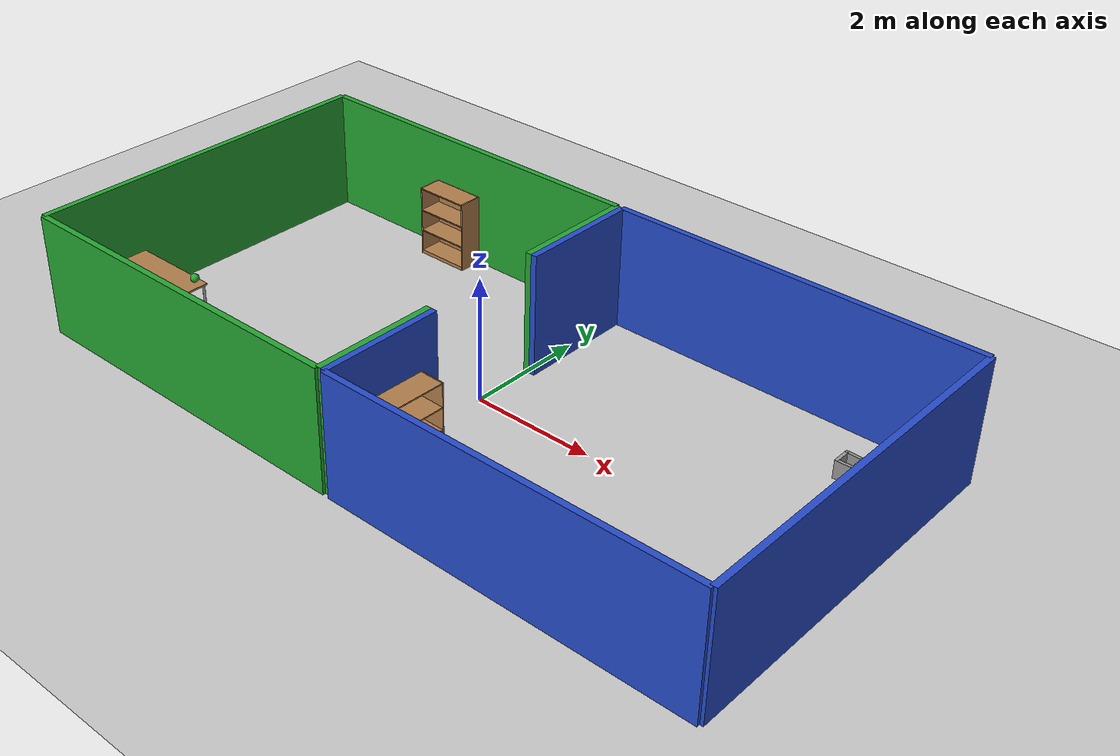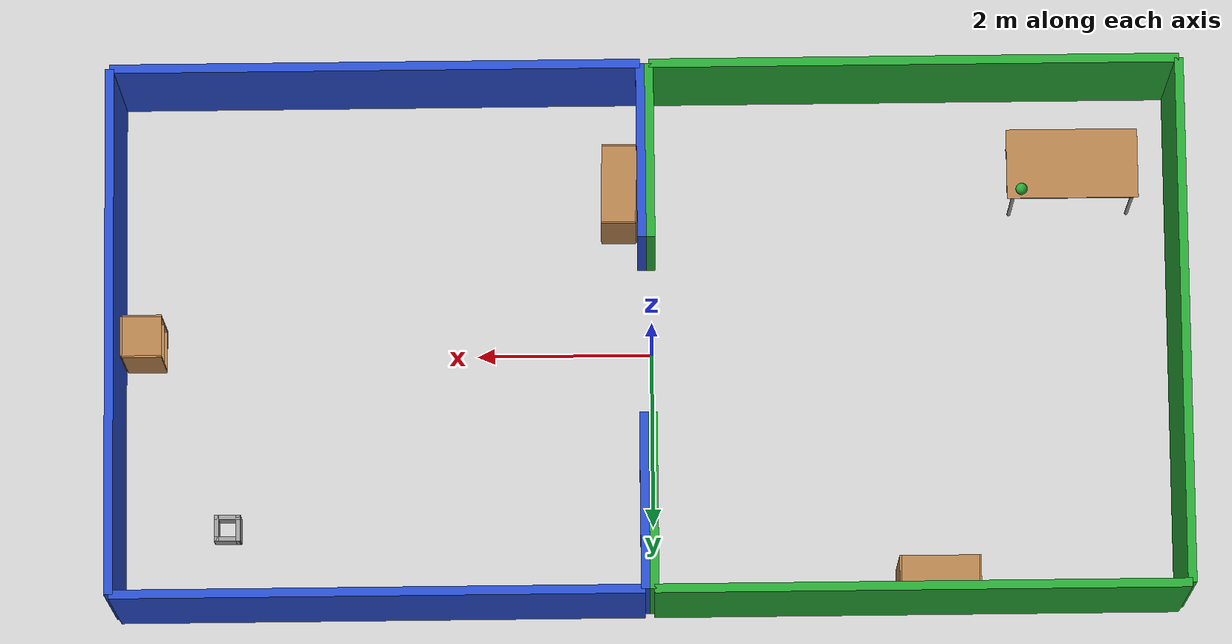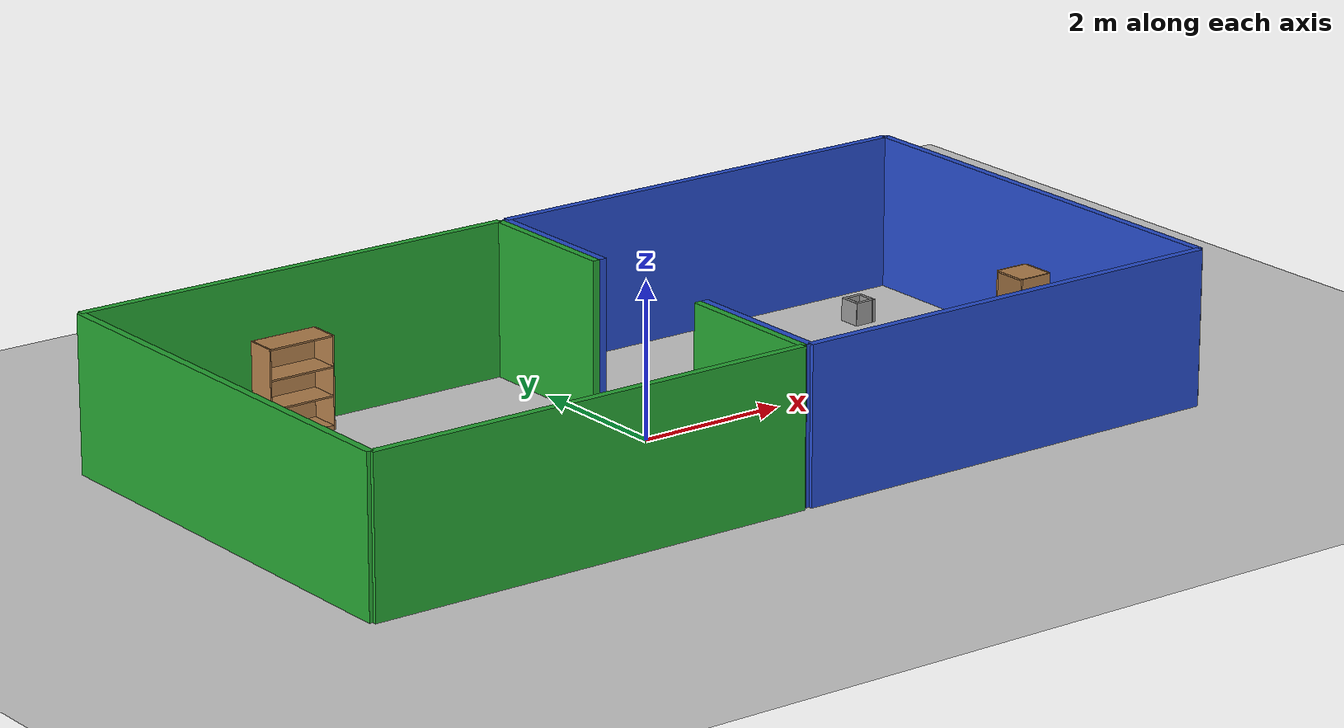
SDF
<sdf version="1.7">
 <world name="default">
  <light name="sun" type="directional">
   <pose>0 0 10 0 -0 0</pose>
   <diffuse>0.8 0.8 0.8 1</diffuse>
   <specular>0.2 0.2 0.2 1</specular>
   <attenuation>
    <range>1000</range>
    <constant>0.9</constant>
    <linear>0.01</linear>
    <quadratic>0.001</quadratic>
   </attenuation>
   <direction>-0.5 0.1 -0.9</direction>
   <spot><inner_angle>0</inner_angle><outer_angle>0</outer_angle><falloff>0</falloff></spot>
  </light>
  <model name="ground_plane">
   <static>1</static>
   <link name="link">
    <collision name="collision">
     <geometry><plane><normal>0 0 1</normal><size>100 100</size></plane></geometry>
     <surface>
      <contact><collide_bitmask>65535</collide_bitmask></contact>
      <friction><ode><mu>100</mu><mu2>50</mu2></ode></friction>
     </surface>
    </collision>
    <visual name="visual">
     <cast_shadows>0</cast_shadows>
     <geometry><plane><normal>0 0 1</normal><size>100 100</size></plane></geometry>
     <material>
      <script><uri>file://media/materials/scripts/gazebo.material</uri><name>Gazebo/Grey</name></script>
     </material>
    </visual>
   </link>
  </model>
  <gravity>0 0 -9.8</gravity>
  <magnetic_field>6e-06 2.3e-05 -4.2e-05</magnetic_field>
  <atmosphere type="adiabatic"/>
  <physics type="ode">
   <max_step_size>0.001</max_step_size>
   <real_time_factor>1</real_time_factor>
   <real_time_update_rate>1000</real_time_update_rate>
  </physics>
  <scene><ambient>0.4 0.4 0.4 1</ambient><background>0.7 0.7 0.7 1</background><shadows>1</shadows></scene>
  <spherical_coordinates>
   <surface_model>EARTH_WGS84</surface_model>
   <latitude_deg>0</latitude_deg>
   <longitude_deg>0</longitude_deg>
   <elevation>0</elevation>
   <heading_deg>0</heading_deg>
  </spherical_coordinates>
  <model name="blue_wall_half">
   <link name="link">
    <inertial>
     <mass>1</mass>
     <inertia>
      <ixx>0.166667</ixx>
      <ixy>0</ixy>
      <ixz>0</ixz>
      <iyy>0.166667</iyy>
      <iyz>0</iyz>
      <izz>0.166667</izz>
     </inertia>
    </inertial>
    <visual name="visual">
     <geometry><box><size>2 0.1 2</size></box></geometry>
     <material>
      <script><name>Gazebo/Blue</name><uri>file://media/materials/scripts/gazebo.material</uri></script>
      <shader type="pixel"><normal_map>__default__</normal_map></shader>
      <ambient>0 0 1 1</ambient>
      <diffuse>0 0 1 1</diffuse>
      <specular>0.1 0.1 0.1 1</specular>
      <emissive>0 0 0 1</emissive>
     </material>
    </visual>
    <collision name="collision">
     <geometry><box><size>2 0.1 2</size></box></geometry>
     <surface>
      <friction>
       <ode><mu>1</mu><mu2>1</mu2><fdir1>0 0 0</fdir1><slip1>0</slip1><slip2>0</slip2></ode>
       <torsional>
        <coefficient>1</coefficient>
        <patch_radius>0</patch_radius>
        <surface_radius>0</surface_radius>
        <use_patch_radius>1</use_patch_radius>
        <ode><slip>0</slip></ode>
       </torsional>
      </friction>
      <bounce><restitution_coefficient>0</restitution_coefficient><threshold>1e+06</threshold></bounce>
      <contact>
       <collide_without_contact>0</collide_without_contact>
       <collide_without_contact_bitmask>1</collide_without_contact_bitmask>
       <collide_bitmask>1</collide_bitmask>
       <ode>
        <soft_cfm>0</soft_cfm>
        <soft_erp>0.2</soft_erp>
        <kp>1e+13</kp>
        <kd>1</kd>
        <max_vel>0.01</max_vel>
        <min_depth>0</min_depth>
       </ode>
       <bullet>
        <split_impulse>1</split_impulse>
        <split_impulse_penetration_threshold>-0.01</split_impulse_penetration_threshold>
        <soft_cfm>0</soft_cfm>
        <soft_erp>0.2</soft_erp>
        <kp>1e+13</kp>
        <kd>1</kd>
       </bullet>
      </contact>
     </surface>
    </collision>
   </link>
   <static>1</static>
   <pose>0.1 2 1 0 -0 1.5708</pose>
  </model>
  <model name="blue_wall_1">
   <link name="link">
    <inertial>
     <mass>1</mass>
     <inertia>
      <ixx>0.166667</ixx>
      <ixy>0</ixy>
      <ixz>0</ixz>
      <iyy>0.166667</iyy>
      <iyz>0</iyz>
      <izz>0.166667</izz>
     </inertia>
    </inertial>
    <visual name="visual">
     <geometry><box><size>6 0.1 2</size></box></geometry>
     <material>
      <script><name>Gazebo/Blue</name><uri>file://media/materials/scripts/gazebo.material</uri></script>
      <shader type="pixel"><normal_map>__default__</normal_map></shader>
      <ambient>0 0 1 1</ambient>
      <diffuse>0 0 1 1</diffuse>
      <specular>0.1 0.1 0.1 1</specular>
      <emissive>0 0 0 1</emissive>
     </material>
    </visual>
    <collision name="collision_11">
     <geometry><box><size>6 0.1 2</size></box></geometry>
     <surface>
      <friction>
       <ode><mu>1</mu><mu2>1</mu2><fdir1>0 0 0</fdir1><slip1>0</slip1><slip2>0</slip2></ode>
       <torsional>
        <coefficient>1</coefficient>
        <patch_radius>0</patch_radius>
        <surface_radius>0</surface_radius>
        <use_patch_radius>1</use_patch_radius>
        <ode><slip>0</slip></ode>
       </torsional>
      </friction>
      <bounce><restitution_coefficient>0</restitution_coefficient><threshold>1e+06</threshold></bounce>
      <contact>
       <collide_without_contact>0</collide_without_contact>
       <collide_without_contact_bitmask>1</collide_without_contact_bitmask>
       <collide_bitmask>1</collide_bitmask>
       <ode>
        <soft_cfm>0</soft_cfm>
        <soft_erp>0.2</soft_erp>
        <kp>1e+13</kp>
        <kd>1</kd>
        <max_vel>0.01</max_vel>
        <min_depth>0</min_depth>
       </ode>
       <bullet>
        <split_impulse>1</split_impulse>
        <split_impulse_penetration_threshold>-0.01</split_impulse_penetration_threshold>
        <soft_cfm>0</soft_cfm>
        <soft_erp>0.2</soft_erp>
        <kp>1e+13</kp>
        <kd>1</kd>
       </bullet>
      </contact>
     </surface>
    </collision>
   </link>
   <static>1</static>
   <pose>3.1 3 1 0 -0 0</pose>
  </model>
  <model name="blue_wall_0">
   <link name="link">
    <inertial>
     <mass>1</mass>
     <inertia>
      <ixx>0.166667</ixx>
      <ixy>0</ixy>
      <ixz>0</ixz>
      <iyy>0.166667</iyy>
      <iyz>0</iyz>
      <izz>0.166667</izz>
     </inertia>
    </inertial>
    <visual name="visual">
     <geometry><box><size>6 0.1 2</size></box></geometry>
     <material>
      <script><name>Gazebo/Blue</name><uri>file://media/materials/scripts/gazebo.material</uri></script>
      <shader type="pixel"><normal_map>__default__</normal_map></shader>
      <ambient>0 0 1 1</ambient>
      <diffuse>0 0 1 1</diffuse>
      <specular>0.1 0.1 0.1 1</specular>
      <emissive>0 0 0 1</emissive>
     </material>
    </visual>
    <collision name="collision_11">
     <geometry><box><size>6 0.1 2</size></box></geometry>
     <surface>
      <friction>
       <ode><mu>1</mu><mu2>1</mu2><fdir1>0 0 0</fdir1><slip1>0</slip1><slip2>0</slip2></ode>
       <torsional>
        <coefficient>1</coefficient>
        <patch_radius>0</patch_radius>
        <surface_radius>0</surface_radius>
        <use_patch_radius>1</use_patch_radius>
        <ode><slip>0</slip></ode>
       </torsional>
      </friction>
      <bounce><restitution_coefficient>0</restitution_coefficient><threshold>1e+06</threshold></bounce>
      <contact>
       <collide_without_contact>0</collide_without_contact>
       <collide_without_contact_bitmask>1</collide_without_contact_bitmask>
       <collide_bitmask>1</collide_bitmask>
       <ode>
        <soft_cfm>0</soft_cfm>
        <soft_erp>0.2</soft_erp>
        <kp>1e+13</kp>
        <kd>1</kd>
        <max_vel>0.01</max_vel>
        <min_depth>0</min_depth>
       </ode>
       <bullet>
        <split_impulse>1</split_impulse>
        <split_impulse_penetration_threshold>-0.01</split_impulse_penetration_threshold>
        <soft_cfm>0</soft_cfm>
        <soft_erp>0.2</soft_erp>
        <kp>1e+13</kp>
        <kd>1</kd>
       </bullet>
      </contact>
     </surface>
    </collision>
   </link>
   <static>1</static>
   <pose>6.1 0 1 0 -0 1.5708</pose>
  </model>
  <model name="blue_wall">
   <link name="link">
    <inertial>
     <mass>1</mass>
     <inertia>
      <ixx>0.166667</ixx>
      <ixy>0</ixy>
      <ixz>0</ixz>
      <iyy>0.166667</iyy>
      <iyz>0</iyz>
      <izz>0.166667</izz>
     </inertia>
    </inertial>
    <visual name="visual">
     <geometry><box><size>6 0.1 2</size></box></geometry>
     <material>
      <script><name>Gazebo/Blue</name><uri>file://media/materials/scripts/gazebo.material</uri></script>
      <shader type="pixel"><normal_map>__default__</normal_map></shader>
      <ambient>0 0 1 1</ambient>
      <diffuse>0 0 1 1</diffuse>
      <specular>0.1 0.1 0.1 1</specular>
      <emissive>0 0 0 1</emissive>
     </material>
    </visual>
    <collision name="collision_11">
     <geometry><box><size>6 0.1 2</size></box></geometry>
     <surface>
      <friction>
       <ode><mu>1</mu><mu2>1</mu2><fdir1>0 0 0</fdir1><slip1>0</slip1><slip2>0</slip2></ode>
       <torsional>
        <coefficient>1</coefficient>
        <patch_radius>0</patch_radius>
        <surface_radius>0</surface_radius>
        <use_patch_radius>1</use_patch_radius>
        <ode><slip>0</slip></ode>
       </torsional>
      </friction>
      <bounce><restitution_coefficient>0</restitution_coefficient><threshold>1e+06</threshold></bounce>
      <contact>
       <collide_without_contact>0</collide_without_contact>
       <collide_without_contact_bitmask>1</collide_without_contact_bitmask>
       <collide_bitmask>1</collide_bitmask>
       <ode>
        <soft_cfm>0</soft_cfm>
        <soft_erp>0.2</soft_erp>
        <kp>1e+13</kp>
        <kd>1</kd>
        <max_vel>0.01</max_vel>
        <min_depth>0</min_depth>
       </ode>
       <bullet>
        <split_impulse>1</split_impulse>
        <split_impulse_penetration_threshold>-0.01</split_impulse_penetration_threshold>
        <soft_cfm>0</soft_cfm>
        <soft_erp>0.2</soft_erp>
        <kp>1e+13</kp>
        <kd>1</kd>
       </bullet>
      </contact>
     </surface>
    </collision>
   </link>
   <static>1</static>
   <pose>3.1 -3 1 0 -0 0</pose>
  </model>
  <model name="blue_wall_half_0">
   <link name="link">
    <inertial>
     <mass>1</mass>
     <inertia>
      <ixx>0.166667</ixx>
      <ixy>0</ixy>
      <ixz>0</ixz>
      <iyy>0.166667</iyy>
      <iyz>0</iyz>
      <izz>0.166667</izz>
     </inertia>
    </inertial>
    <visual name="visual">
     <geometry><box><size>2 0.1 2</size></box></geometry>
     <material>
      <script><name>Gazebo/Blue</name><uri>file://media/materials/scripts/gazebo.material</uri></script>
      <shader type="pixel"><normal_map>__default__</normal_map></shader>
      <ambient>0 0 1 1</ambient>
      <diffuse>0 0 1 1</diffuse>
      <specular>0.1 0.1 0.1 1</specular>
      <emissive>0 0 0 1</emissive>
     </material>
    </visual>
    <collision name="collision">
     <geometry><box><size>2 0.1 2</size></box></geometry>
     <surface>
      <friction>
       <ode><mu>1</mu><mu2>1</mu2><fdir1>0 0 0</fdir1><slip1>0</slip1><slip2>0</slip2></ode>
       <torsional>
        <coefficient>1</coefficient>
        <patch_radius>0</patch_radius>
        <surface_radius>0</surface_radius>
        <use_patch_radius>1</use_patch_radius>
        <ode><slip>0</slip></ode>
       </torsional>
      </friction>
      <bounce><restitution_coefficient>0</restitution_coefficient><threshold>1e+06</threshold></bounce>
      <contact>
       <collide_without_contact>0</collide_without_contact>
       <collide_without_contact_bitmask>1</collide_without_contact_bitmask>
       <collide_bitmask>1</collide_bitmask>
       <ode>
        <soft_cfm>0</soft_cfm>
        <soft_erp>0.2</soft_erp>
        <kp>1e+13</kp>
        <kd>1</kd>
        <max_vel>0.01</max_vel>
        <min_depth>0</min_depth>
       </ode>
       <bullet>
        <split_impulse>1</split_impulse>
        <split_impulse_penetration_threshold>-0.01</split_impulse_penetration_threshold>
        <soft_cfm>0</soft_cfm>
        <soft_erp>0.2</soft_erp>
        <kp>1e+13</kp>
        <kd>1</kd>
       </bullet>
      </contact>
     </surface>
    </collision>
   </link>
   <static>1</static>
   <pose>0.1 -2 1 0 -0 1.5708</pose>
  </model>
  <model name="green_wall">
   <link name="link">
    <inertial>
     <mass>1</mass>
     <inertia>
      <ixx>0.166667</ixx>
      <ixy>0</ixy>
      <ixz>0</ixz>
      <iyy>0.166667</iyy>
      <iyz>0</iyz>
      <izz>0.166667</izz>
     </inertia>
    </inertial>
    <visual name="visual">
     <geometry><box><size>6 0.1 2</size></box></geometry>
     <material>
      <script><name>Gazebo/Green</name><uri>file://media/materials/scripts/gazebo.material</uri></script>
      <shader type="pixel"><normal_map>__default__</normal_map></shader>
      <ambient>0 1 0 1</ambient>
      <diffuse>0 1 0 1</diffuse>
      <specular>0.1 0.1 0.1 1</specular>
      <emissive>0 0 0 1</emissive>
     </material>
    </visual>
    <collision name="collision">
     <geometry><box><size>6 0.1 2</size></box></geometry>
     <surface>
      <friction>
       <ode><mu>1</mu><mu2>1</mu2><fdir1>0 0 0</fdir1><slip1>0</slip1><slip2>0</slip2></ode>
       <torsional>
        <coefficient>1</coefficient>
        <patch_radius>0</patch_radius>
        <surface_radius>0</surface_radius>
        <use_patch_radius>1</use_patch_radius>
        <ode><slip>0</slip></ode>
       </torsional>
      </friction>
      <bounce><restitution_coefficient>0</restitution_coefficient><threshold>1e+06</threshold></bounce>
      <contact>
       <collide_without_contact>0</collide_without_contact>
       <collide_without_contact_bitmask>1</collide_without_contact_bitmask>
       <collide_bitmask>1</collide_bitmask>
       <ode>
        <soft_cfm>0</soft_cfm>
        <soft_erp>0.2</soft_erp>
        <kp>1e+13</kp>
        <kd>1</kd>
        <max_vel>0.01</max_vel>
        <min_depth>0</min_depth>
       </ode>
       <bullet>
        <split_impulse>1</split_impulse>
        <split_impulse_penetration_threshold>-0.01</split_impulse_penetration_threshold>
        <soft_cfm>0</soft_cfm>
        <soft_erp>0.2</soft_erp>
        <kp>1e+13</kp>
        <kd>1</kd>
       </bullet>
      </contact>
     </surface>
    </collision>
   </link>
   <static>1</static>
   <pose>-3 3 1 0 -0 0</pose>
  </model>
  <model name="green_wall_half">
   <link name="link">
    <inertial>
     <mass>1</mass>
     <inertia>
      <ixx>0.166667</ixx>
      <ixy>0</ixy>
      <ixz>0</ixz>
      <iyy>0.166667</iyy>
      <iyz>0</iyz>
      <izz>0.166667</izz>
     </inertia>
    </inertial>
    <visual name="visual">
     <geometry><box><size>2 0.1 2</size></box></geometry>
     <material>
      <script><name>Gazebo/Green</name><uri>file://media/materials/scripts/gazebo.material</uri></script>
      <shader type="pixel"><normal_map>__default__</normal_map></shader>
      <ambient>0 1 0 1</ambient>
      <diffuse>0 1 0 1</diffuse>
      <specular>0.1 0.1 0.1 1</specular>
      <emissive>0 0 0 1</emissive>
     </material>
    </visual>
    <collision name="collision">
     <geometry><box><size>2 0.1 2</size></box></geometry>
     <surface>
      <friction>
       <ode><mu>1</mu><mu2>1</mu2><fdir1>0 0 0</fdir1><slip1>0</slip1><slip2>0</slip2></ode>
       <torsional>
        <coefficient>1</coefficient>
        <patch_radius>0</patch_radius>
        <surface_radius>0</surface_radius>
        <use_patch_radius>1</use_patch_radius>
        <ode><slip>0</slip></ode>
       </torsional>
      </friction>
      <bounce><restitution_coefficient>0</restitution_coefficient><threshold>1e+06</threshold></bounce>
      <contact>
       <collide_without_contact>0</collide_without_contact>
       <collide_without_contact_bitmask>1</collide_without_contact_bitmask>
       <collide_bitmask>1</collide_bitmask>
       <ode>
        <soft_cfm>0</soft_cfm>
        <soft_erp>0.2</soft_erp>
        <kp>1e+13</kp>
        <kd>1</kd>
        <max_vel>0.01</max_vel>
        <min_depth>0</min_depth>
       </ode>
       <bullet>
        <split_impulse>1</split_impulse>
        <split_impulse_penetration_threshold>-0.01</split_impulse_penetration_threshold>
        <soft_cfm>0</soft_cfm>
        <soft_erp>0.2</soft_erp>
        <kp>1e+13</kp>
        <kd>1</kd>
       </bullet>
      </contact>
     </surface>
    </collision>
   </link>
   <static>1</static>
   <pose>0 -2 1 0 -0 1.5708</pose>
  </model>
  <model name="green_wall_half_0">
   <link name="link">
    <inertial>
     <mass>1</mass>
     <inertia>
      <ixx>0.166667</ixx>
      <ixy>0</ixy>
      <ixz>0</ixz>
      <iyy>0.166667</iyy>
      <iyz>0</iyz>
      <izz>0.166667</izz>
     </inertia>
    </inertial>
    <visual name="visual">
     <geometry><box><size>2 0.1 2</size></box></geometry>
     <material>
      <script><name>Gazebo/Green</name><uri>file://media/materials/scripts/gazebo.material</uri></script>
      <shader type="pixel"><normal_map>__default__</normal_map></shader>
      <ambient>0 1 0 1</ambient>
      <diffuse>0 1 0 1</diffuse>
      <specular>0.1 0.1 0.1 1</specular>
      <emissive>0 0 0 1</emissive>
     </material>
    </visual>
    <collision name="collision">
     <geometry><box><size>2 0.1 2</size></box></geometry>
     <surface>
      <friction>
       <ode><mu>1</mu><mu2>1</mu2><fdir1>0 0 0</fdir1><slip1>0</slip1><slip2>0</slip2></ode>
       <torsional>
        <coefficient>1</coefficient>
        <patch_radius>0</patch_radius>
        <surface_radius>0</surface_radius>
        <use_patch_radius>1</use_patch_radius>
        <ode><slip>0</slip></ode>
       </torsional>
      </friction>
      <bounce><restitution_coefficient>0</restitution_coefficient><threshold>1e+06</threshold></bounce>
      <contact>
       <collide_without_contact>0</collide_without_contact>
       <collide_without_contact_bitmask>1</collide_without_contact_bitmask>
       <collide_bitmask>1</collide_bitmask>
       <ode>
        <soft_cfm>0</soft_cfm>
        <soft_erp>0.2</soft_erp>
        <kp>1e+13</kp>
        <kd>1</kd>
        <max_vel>0.01</max_vel>
        <min_depth>0</min_depth>
       </ode>
       <bullet>
        <split_impulse>1</split_impulse>
        <split_impulse_penetration_threshold>-0.01</split_impulse_penetration_threshold>
        <soft_cfm>0</soft_cfm>
        <soft_erp>0.2</soft_erp>
        <kp>1e+13</kp>
        <kd>1</kd>
       </bullet>
      </contact>
     </surface>
    </collision>
   </link>
   <static>1</static>
   <pose>0 2 1 0 -0 1.5708</pose>
  </model>
  <model name="green_wall_0">
   <link name="link">
    <inertial>
     <mass>1</mass>
     <inertia>
      <ixx>0.166667</ixx>
      <ixy>0</ixy>
      <ixz>0</ixz>
      <iyy>0.166667</iyy>
      <iyz>0</iyz>
      <izz>0.166667</izz>
     </inertia>
    </inertial>
    <visual name="visual">
     <geometry><box><size>6 0.1 2</size></box></geometry>
     <material>
      <script><name>Gazebo/Green</name><uri>file://media/materials/scripts/gazebo.material</uri></script>
      <shader type="pixel"><normal_map>__default__</normal_map></shader>
      <ambient>0 1 0 1</ambient>
      <diffuse>0 1 0 1</diffuse>
      <specular>0.1 0.1 0.1 1</specular>
      <emissive>0 0 0 1</emissive>
     </material>
    </visual>
    <collision name="collision">
     <geometry><box><size>6 0.1 2</size></box></geometry>
     <surface>
      <friction>
       <ode><mu>1</mu><mu2>1</mu2><fdir1>0 0 0</fdir1><slip1>0</slip1><slip2>0</slip2></ode>
       <torsional>
        <coefficient>1</coefficient>
        <patch_radius>0</patch_radius>
        <surface_radius>0</surface_radius>
        <use_patch_radius>1</use_patch_radius>
        <ode><slip>0</slip></ode>
       </torsional>
      </friction>
      <bounce><restitution_coefficient>0</restitution_coefficient><threshold>1e+06</threshold></bounce>
      <contact>
       <collide_without_contact>0</collide_without_contact>
       <collide_without_contact_bitmask>1</collide_without_contact_bitmask>
       <collide_bitmask>1</collide_bitmask>
       <ode>
        <soft_cfm>0</soft_cfm>
        <soft_erp>0.2</soft_erp>
        <kp>1e+13</kp>
        <kd>1</kd>
        <max_vel>0.01</max_vel>
        <min_depth>0</min_depth>
       </ode>
       <bullet>
        <split_impulse>1</split_impulse>
        <split_impulse_penetration_threshold>-0.01</split_impulse_penetration_threshold>
        <soft_cfm>0</soft_cfm>
        <soft_erp>0.2</soft_erp>
        <kp>1e+13</kp>
        <kd>1</kd>
       </bullet>
      </contact>
     </surface>
    </collision>
   </link>
   <static>1</static>
   <pose>-3 -3 1 0 -0 0</pose>
  </model>
  <model name="green_wall_1">
   <link name="link">
    <inertial>
     <mass>1</mass>
     <inertia>
      <ixx>0.166667</ixx>
      <ixy>0</ixy>
      <ixz>0</ixz>
      <iyy>0.166667</iyy>
      <iyz>0</iyz>
      <izz>0.166667</izz>
     </inertia>
    </inertial>
    <visual name="visual">
     <geometry><box><size>6 0.1 2</size></box></geometry>
     <material>
      <script><name>Gazebo/Green</name><uri>file://media/materials/scripts/gazebo.material</uri></script>
      <shader type="pixel"><normal_map>__default__</normal_map></shader>
      <ambient>0 1 0 1</ambient>
      <diffuse>0 1 0 1</diffuse>
      <specular>0.1 0.1 0.1 1</specular>
      <emissive>0 0 0 1</emissive>
     </material>
    </visual>
    <collision name="collision">
     <geometry><box><size>6 0.1 2</size></box></geometry>
     <surface>
      <friction>
       <ode><mu>1</mu><mu2>1</mu2><fdir1>0 0 0</fdir1><slip1>0</slip1><slip2>0</slip2></ode>
       <torsional>
        <coefficient>1</coefficient>
        <patch_radius>0</patch_radius>
        <surface_radius>0</surface_radius>
        <use_patch_radius>1</use_patch_radius>
        <ode><slip>0</slip></ode>
       </torsional>
      </friction>
      <bounce><restitution_coefficient>0</restitution_coefficient><threshold>1e+06</threshold></bounce>
      <contact>
       <collide_without_contact>0</collide_without_contact>
       <collide_without_contact_bitmask>1</collide_without_contact_bitmask>
       <collide_bitmask>1</collide_bitmask>
       <ode>
        <soft_cfm>0</soft_cfm>
        <soft_erp>0.2</soft_erp>
        <kp>1e+13</kp>
        <kd>1</kd>
        <max_vel>0.01</max_vel>
        <min_depth>0</min_depth>
       </ode>
       <bullet>
        <split_impulse>1</split_impulse>
        <split_impulse_penetration_threshold>-0.01</split_impulse_penetration_threshold>
        <soft_cfm>0</soft_cfm>
        <soft_erp>0.2</soft_erp>
        <kp>1e+13</kp>
        <kd>1</kd>
       </bullet>
      </contact>
     </surface>
    </collision>
   </link>
   <static>1</static>
   <pose>-6 0 1 0 -0 1.5708</pose>
  </model>
  <model name="bin">
   <link name="link">
    <inertial>
     <mass>1</mass>
     <inertia>
      <ixx>0.166667</ixx>
      <ixy>0</ixy>
      <ixz>0</ixz>
      <iyy>0.166667</iyy>
      <iyz>0</iyz>
      <izz>0.166667</izz>
     </inertia>
    </inertial>
    <visual name="visual">
     <geometry><box><size>0.05 0.3 0.3</size></box></geometry>
     <material>
      <script><name>Gazebo/Grey</name><uri>file://media/materials/scripts/gazebo.material</uri></script>
      <shader type="pixel"><normal_map>__default__</normal_map></shader>
      <ambient>0.3 0.3 0.3 1</ambient>
      <diffuse>0.7 0.7 0.7 1</diffuse>
      <specular>0.01 0.01 0.01 1</specular>
      <emissive>0 0 0 1</emissive>
     </material>
    </visual>
    <collision name="collision">
     <geometry><box><size>0.05 0.3 0.3</size></box></geometry>
     <surface>
      <friction>
       <ode><mu>1</mu><mu2>1</mu2><fdir1>0 0 0</fdir1><slip1>0</slip1><slip2>0</slip2></ode>
       <torsional>
        <coefficient>1</coefficient>
        <patch_radius>0</patch_radius>
        <surface_radius>0</surface_radius>
        <use_patch_radius>1</use_patch_radius>
        <ode><slip>0</slip></ode>
       </torsional>
      </friction>
      <bounce><restitution_coefficient>0</restitution_coefficient><threshold>1e+06</threshold></bounce>
      <contact>
       <collide_without_contact>0</collide_without_contact>
       <collide_without_contact_bitmask>1</collide_without_contact_bitmask>
       <collide_bitmask>1</collide_bitmask>
       <ode>
        <soft_cfm>0</soft_cfm>
        <soft_erp>0.2</soft_erp>
        <kp>1e+13</kp>
        <kd>1</kd>
        <max_vel>0.01</max_vel>
        <min_depth>0</min_depth>
       </ode>
       <bullet>
        <split_impulse>1</split_impulse>
        <split_impulse_penetration_threshold>-0.01</split_impulse_penetration_threshold>
        <soft_cfm>0</soft_cfm>
        <soft_erp>0.2</soft_erp>
        <kp>1e+13</kp>
        <kd>1</kd>
       </bullet>
      </contact>
     </surface>
    </collision>
   </link>
   <link name="link_clone">
    <inertial>
     <mass>1</mass>
     <inertia>
      <ixx>0.166667</ixx>
      <ixy>0</ixy>
      <ixz>0</ixz>
      <iyy>0.166667</iyy>
      <iyz>0</iyz>
      <izz>0.166667</izz>
     </inertia>
    </inertial>
    <pose>-0.250916 0.0032 0 0 -0 0</pose>
    <visual name="visual">
     <geometry><box><size>0.05 0.3 0.3</size></box></geometry>
     <material>
      <script><name>Gazebo/Grey</name><uri>file://media/materials/scripts/gazebo.material</uri></script>
      <shader type="pixel"><normal_map>__default__</normal_map></shader>
      <ambient>0.3 0.3 0.3 1</ambient>
      <diffuse>0.7 0.7 0.7 1</diffuse>
      <specular>0.01 0.01 0.01 1</specular>
      <emissive>0 0 0 1</emissive>
     </material>
    </visual>
    <collision name="collision">
     <geometry><box><size>0.05 0.3 0.3</size></box></geometry>
     <surface>
      <friction>
       <ode><mu>1</mu><mu2>1</mu2><fdir1>0 0 0</fdir1><slip1>0</slip1><slip2>0</slip2></ode>
       <torsional>
        <coefficient>1</coefficient>
        <patch_radius>0</patch_radius>
        <surface_radius>0</surface_radius>
        <use_patch_radius>1</use_patch_radius>
        <ode><slip>0</slip></ode>
       </torsional>
      </friction>
      <bounce><restitution_coefficient>0</restitution_coefficient><threshold>1e+06</threshold></bounce>
      <contact>
       <collide_without_contact>0</collide_without_contact>
       <collide_without_contact_bitmask>1</collide_without_contact_bitmask>
       <collide_bitmask>1</collide_bitmask>
       <ode>
        <soft_cfm>0</soft_cfm>
        <soft_erp>0.2</soft_erp>
        <kp>1e+13</kp>
        <kd>1</kd>
        <max_vel>0.01</max_vel>
        <min_depth>0</min_depth>
       </ode>
       <bullet>
        <split_impulse>1</split_impulse>
        <split_impulse_penetration_threshold>-0.01</split_impulse_penetration_threshold>
        <soft_cfm>0</soft_cfm>
        <soft_erp>0.2</soft_erp>
        <kp>1e+13</kp>
        <kd>1</kd>
       </bullet>
      </contact>
     </surface>
    </collision>
   </link>
   <link name="link_clone_0">
    <inertial>
     <mass>1</mass>
     <inertia>
      <ixx>0.166667</ixx>
      <ixy>0</ixy>
      <ixz>0</ixz>
      <iyy>0.166667</iyy>
      <iyz>0</iyz>
      <izz>0.166667</izz>
     </inertia>
    </inertial>
    <pose>-0.124927 0.126646 0 0 0 -1.58202</pose>
    <visual name="visual">
     <geometry><box><size>0.05 0.3 0.3</size></box></geometry>
     <material>
      <script><name>Gazebo/Grey</name><uri>file://media/materials/scripts/gazebo.material</uri></script>
      <shader type="pixel"><normal_map>__default__</normal_map></shader>
      <ambient>0.3 0.3 0.3 1</ambient>
      <diffuse>0.7 0.7 0.7 1</diffuse>
      <specular>0.01 0.01 0.01 1</specular>
      <emissive>0 0 0 1</emissive>
     </material>
    </visual>
    <collision name="collision">
     <geometry><box><size>0.05 0.3 0.3</size></box></geometry>
     <surface>
      <friction>
       <ode><mu>1</mu><mu2>1</mu2><fdir1>0 0 0</fdir1><slip1>0</slip1><slip2>0</slip2></ode>
       <torsional>
        <coefficient>1</coefficient>
        <patch_radius>0</patch_radius>
        <surface_radius>0</surface_radius>
        <use_patch_radius>1</use_patch_radius>
        <ode><slip>0</slip></ode>
       </torsional>
      </friction>
      <bounce><restitution_coefficient>0</restitution_coefficient><threshold>1e+06</threshold></bounce>
      <contact>
       <collide_without_contact>0</collide_without_contact>
       <collide_without_contact_bitmask>1</collide_without_contact_bitmask>
       <collide_bitmask>1</collide_bitmask>
       <ode>
        <soft_cfm>0</soft_cfm>
        <soft_erp>0.2</soft_erp>
        <kp>1e+13</kp>
        <kd>1</kd>
        <max_vel>0.01</max_vel>
        <min_depth>0</min_depth>
       </ode>
       <bullet>
        <split_impulse>1</split_impulse>
        <split_impulse_penetration_threshold>-0.01</split_impulse_penetration_threshold>
        <soft_cfm>0</soft_cfm>
        <soft_erp>0.2</soft_erp>
        <kp>1e+13</kp>
        <kd>1</kd>
       </bullet>
      </contact>
     </surface>
    </collision>
   </link>
   <link name="link_clone_1">
    <inertial>
     <mass>1</mass>
     <inertia>
      <ixx>0.166667</ixx>
      <ixy>0</ixy>
      <ixz>0</ixz>
      <iyy>0.166667</iyy>
      <iyz>0</iyz>
      <izz>0.166667</izz>
     </inertia>
    </inertial>
    <pose>-0.125253 -0.124446 0 0 -0 1.56581</pose>
    <visual name="visual">
     <geometry><box><size>0.05 0.3 0.3</size></box></geometry>
     <material>
      <script><name>Gazebo/Grey</name><uri>file://media/materials/scripts/gazebo.material</uri></script>
      <shader type="pixel"><normal_map>__default__</normal_map></shader>
      <ambient>0.3 0.3 0.3 1</ambient>
      <diffuse>0.7 0.7 0.7 1</diffuse>
      <specular>0.01 0.01 0.01 1</specular>
      <emissive>0 0 0 1</emissive>
     </material>
    </visual>
    <collision name="collision">
     <geometry><box><size>0.05 0.3 0.3</size></box></geometry>
     <surface>
      <friction>
       <ode><mu>1</mu><mu2>1</mu2><fdir1>0 0 0</fdir1><slip1>0</slip1><slip2>0</slip2></ode>
       <torsional>
        <coefficient>1</coefficient>
        <patch_radius>0</patch_radius>
        <surface_radius>0</surface_radius>
        <use_patch_radius>1</use_patch_radius>
        <ode><slip>0</slip></ode>
       </torsional>
      </friction>
      <bounce><restitution_coefficient>0</restitution_coefficient><threshold>1e+06</threshold></bounce>
      <contact>
       <collide_without_contact>0</collide_without_contact>
       <collide_without_contact_bitmask>1</collide_without_contact_bitmask>
       <collide_bitmask>1</collide_bitmask>
       <ode>
        <soft_cfm>0</soft_cfm>
        <soft_erp>0.2</soft_erp>
        <kp>1e+13</kp>
        <kd>1</kd>
        <max_vel>0.01</max_vel>
        <min_depth>0</min_depth>
       </ode>
       <bullet>
        <split_impulse>1</split_impulse>
        <split_impulse_penetration_threshold>-0.01</split_impulse_penetration_threshold>
        <soft_cfm>0</soft_cfm>
        <soft_erp>0.2</soft_erp>
        <kp>1e+13</kp>
        <kd>1</kd>
       </bullet>
      </contact>
     </surface>
    </collision>
   </link>
   <static>1</static>
   <pose>5 2 0.15 0 -0 0</pose>
  </model>
  <model name="red_ball">
   <link name="link">
    <inertial>
     <inertia><ixx>1</ixx><ixy>0</ixy><ixz>0</ixz><iyy>1</iyy><iyz>0</iyz><izz>1</izz></inertia>
     <mass>1</mass>
    </inertial>
    <visual name="visual">
     <geometry><sphere><radius>0.0675998</radius></sphere></geometry>
     <material>
      <script><uri>model://green_ball/materials/scripts/ball.material</uri><name>Ball/Green</name></script>
      <shader type="pixel"><normal_map>__default__</normal_map></shader>
      <ambient>1 0 0 0</ambient>
      <diffuse>0 0 0 1</diffuse>
      <specular>0 0 0 1</specular>
      <emissive>0 0 0 1</emissive>
     </material>
    </visual>
    <collision name="surface">
     <geometry><sphere><radius>0.0676</radius></sphere></geometry>
     <surface>
      <friction>
       <ode><mu>1</mu><mu2>1</mu2><fdir1>0 0 0</fdir1><slip1>0</slip1><slip2>0</slip2></ode>
       <torsional>
        <coefficient>1</coefficient>
        <patch_radius>0</patch_radius>
        <surface_radius>0</surface_radius>
        <use_patch_radius>1</use_patch_radius>
        <ode><slip>0</slip></ode>
       </torsional>
      </friction>
      <bounce><restitution_coefficient>0</restitution_coefficient><threshold>1e+06</threshold></bounce>
      <contact>
       <collide_without_contact>0</collide_without_contact>
       <collide_without_contact_bitmask>1</collide_without_contact_bitmask>
       <collide_bitmask>1</collide_bitmask>
       <ode>
        <soft_cfm>0</soft_cfm>
        <soft_erp>0.2</soft_erp>
        <kp>1e+13</kp>
        <kd>1</kd>
        <max_vel>0.01</max_vel>
        <min_depth>0</min_depth>
       </ode>
       <bullet>
        <split_impulse>1</split_impulse>
        <split_impulse_penetration_threshold>-0.01</split_impulse_penetration_threshold>
        <soft_cfm>0</soft_cfm>
        <soft_erp>0.2</soft_erp>
        <kp>1e+13</kp>
        <kd>1</kd>
       </bullet>
      </contact>
     </surface>
    </collision>
   </link>
   <static>0</static>
   <pose>-4.24432 -1.69135 1.07367 0 -0 0</pose>
  </model>
  <model name="table">
   <static>1</static>
   <link name="link">
    <collision name="surface">
     <pose>0 0 1 0 -0 0</pose>
     <geometry><box><size>1.5 0.8 0.03</size></box></geometry>
     <surface><friction><ode><mu>0.6</mu><mu2>0.6</mu2></ode></friction></surface>
    </collision>
    <visual name="visual1">
     <pose>0 0 1 0 -0 0</pose>
     <geometry><box><size>1.5 0.8 0.03</size></box></geometry>
     <material>
      <script><uri>file://media/materials/scripts/gazebo.material</uri><name>Gazebo/Wood</name></script>
     </material>
    </visual>
    <collision name="front_left_leg">
     <pose>0.68 0.38 0.5 0 -0 0</pose>
     <geometry><cylinder><radius>0.02</radius><length>1</length></cylinder></geometry>
    </collision>
    <visual name="front_left_leg">
     <pose>0.68 0.38 0.5 0 -0 0</pose>
     <geometry><cylinder><radius>0.02</radius><length>1</length></cylinder></geometry>
     <material>
      <script><uri>file://media/materials/scripts/gazebo.material</uri><name>Gazebo/Grey</name></script>
     </material>
    </visual>
    <collision name="front_right_leg">
     <pose>0.68 -0.38 0.5 0 -0 0</pose>
     <geometry><cylinder><radius>0.02</radius><length>1</length></cylinder></geometry>
    </collision>
    <visual name="front_right_leg">
     <pose>0.68 -0.38 0.5 0 -0 0</pose>
     <geometry><cylinder><radius>0.02</radius><length>1</length></cylinder></geometry>
     <material>
      <script><uri>file://media/materials/scripts/gazebo.material</uri><name>Gazebo/Grey</name></script>
     </material>
    </visual>
    <collision name="back_right_leg">
     <pose>-0.68 -0.38 0.5 0 -0 0</pose>
     <geometry><cylinder><radius>0.02</radius><length>1</length></cylinder></geometry>
    </collision>
    <visual name="back_right_leg">
     <pose>-0.68 -0.38 0.5 0 -0 0</pose>
     <geometry><cylinder><radius>0.02</radius><length>1</length></cylinder></geometry>
     <material>
      <script><uri>file://media/materials/scripts/gazebo.material</uri><name>Gazebo/Grey</name></script>
     </material>
    </visual>
    <collision name="back_left_leg">
     <pose>-0.68 0.38 0.5 0 -0 0</pose>
     <geometry><cylinder><radius>0.02</radius><length>1</length></cylinder></geometry>
    </collision>
    <visual name="back_left_leg">
     <pose>-0.68 0.38 0.5 0 -0 0</pose>
     <geometry><cylinder><radius>0.02</radius><length>1</length></cylinder></geometry>
     <material>
      <script><uri>file://media/materials/scripts/gazebo.material</uri><name>Gazebo/Grey</name></script>
     </material>
    </visual>
   </link>
   <pose>-4.83139 -1.99656 -0.00893 0 -0 0</pose>
  </model>
  <model name="bookshelf">
   <static>1</static>
   <link name="link">
    <inertial><mass>1</mass></inertial>
    <collision name="back">
     <pose>0 0.005 0.6 0 -0 0</pose>
     <geometry><box><size>0.9 0.01 1.2</size></box></geometry>
    </collision>
    <visual name="visual1">
     <pose>0 0.005 0.6 0 -0 0</pose>
     <geometry><box><size>0.9 0.01 1.2</size></box></geometry>
     <material>
      <script><uri>file://media/materials/scripts/gazebo.material</uri><name>Gazebo/Wood</name></script>
     </material>
    </visual>
    <collision name="left_side">
     <pose>0.45 -0.195 0.6 0 -0 0</pose>
     <geometry><box><size>0.02 0.4 1.2</size></box></geometry>
    </collision>
    <visual name="visual2">
     <pose>0.45 -0.195 0.6 0 -0 0</pose>
     <geometry><box><size>0.02 0.4 1.2</size></box></geometry>
     <material>
      <script><uri>file://media/materials/scripts/gazebo.material</uri><name>Gazebo/Wood</name></script>
     </material>
    </visual>
    <collision name="right_side">
     <pose>-0.45 -0.195 0.6 0 -0 0</pose>
     <geometry><box><size>0.02 0.4 1.2</size></box></geometry>
    </collision>
    <visual name="visual3">
     <pose>-0.45 -0.195 0.6 0 -0 0</pose>
     <geometry><box><size>0.02 0.4 1.2</size></box></geometry>
     <material>
      <script><uri>file://media/materials/scripts/gazebo.material</uri><name>Gazebo/Wood</name></script>
     </material>
    </visual>
    <collision name="bottom">
     <pose>0 -0.195 0.03 0 -0 0</pose>
     <geometry><box><size>0.88 0.4 0.06</size></box></geometry>
    </collision>
    <visual name="visual4">
     <pose>0 -0.195 0.03 0 -0 0</pose>
     <geometry><box><size>0.88 0.4 0.06</size></box></geometry>
     <material>
      <script><uri>file://media/materials/scripts/gazebo.material</uri><name>Gazebo/Wood</name></script>
     </material>
    </visual>
    <collision name="top">
     <pose>0 -0.195 1.19 0 -0 0</pose>
     <geometry><box><size>0.88 0.4 0.02</size></box></geometry>
    </collision>
    <visual name="visual5">
     <pose>0 -0.195 1.19 0 -0 0</pose>
     <geometry><box><size>0.88 0.4 0.02</size></box></geometry>
     <material>
      <script><uri>file://media/materials/scripts/gazebo.material</uri><name>Gazebo/Wood</name></script>
     </material>
    </visual>
    <collision name="low_shelf">
     <pose>0 -0.195 0.43 0 -0 0</pose>
     <geometry><box><size>0.88 0.4 0.02</size></box></geometry>
    </collision>
    <visual name="visual6">
     <pose>0 -0.195 0.43 0 -0 0</pose>
     <geometry><box><size>0.88 0.4 0.02</size></box></geometry>
     <material>
      <script><uri>file://media/materials/scripts/gazebo.material</uri><name>Gazebo/Wood</name></script>
     </material>
    </visual>
    <collision name="high_shelf">
     <pose>0 -0.195 0.8 0 -0 0</pose>
     <geometry><box><size>0.88 0.4 0.02</size></box></geometry>
    </collision>
    <visual name="visual7">
     <pose>0 -0.195 0.8 0 -0 0</pose>
     <geometry><box><size>0.88 0.4 0.02</size></box></geometry>
     <material>
      <script><uri>file://media/materials/scripts/gazebo.material</uri><name>Gazebo/Wood</name></script>
     </material>
    </visual>
   </link>
   <pose>-3.22902 2.93621 0 0 -0 0</pose>
  </model>
  <model name="bookshelf_0">
   <static>1</static>
   <link name="link">
    <inertial><mass>1</mass></inertial>
    <collision name="back">
     <pose>0 0.005 0.6 0 -0 0</pose>
     <geometry><box><size>0.9 0.01 1.2</size></box></geometry>
    </collision>
    <visual name="visual1">
     <pose>0 0.005 0.6 0 -0 0</pose>
     <geometry><box><size>0.9 0.01 1.2</size></box></geometry>
     <material>
      <script><uri>file://media/materials/scripts/gazebo.material</uri><name>Gazebo/Wood</name></script>
     </material>
    </visual>
    <collision name="left_side">
     <pose>0.45 -0.195 0.6 0 -0 0</pose>
     <geometry><box><size>0.02 0.4 1.2</size></box></geometry>
    </collision>
    <visual name="visual2">
     <pose>0.45 -0.195 0.6 0 -0 0</pose>
     <geometry><box><size>0.02 0.4 1.2</size></box></geometry>
     <material>
      <script><uri>file://media/materials/scripts/gazebo.material</uri><name>Gazebo/Wood</name></script>
     </material>
    </visual>
    <collision name="right_side">
     <pose>-0.45 -0.195 0.6 0 -0 0</pose>
     <geometry><box><size>0.02 0.4 1.2</size></box></geometry>
    </collision>
    <visual name="visual3">
     <pose>-0.45 -0.195 0.6 0 -0 0</pose>
     <geometry><box><size>0.02 0.4 1.2</size></box></geometry>
     <material>
      <script><uri>file://media/materials/scripts/gazebo.material</uri><name>Gazebo/Wood</name></script>
     </material>
    </visual>
    <collision name="bottom">
     <pose>0 -0.195 0.03 0 -0 0</pose>
     <geometry><box><size>0.88 0.4 0.06</size></box></geometry>
    </collision>
    <visual name="visual4">
     <pose>0 -0.195 0.03 0 -0 0</pose>
     <geometry><box><size>0.88 0.4 0.06</size></box></geometry>
     <material>
      <script><uri>file://media/materials/scripts/gazebo.material</uri><name>Gazebo/Wood</name></script>
     </material>
    </visual>
    <collision name="top">
     <pose>0 -0.195 1.19 0 -0 0</pose>
     <geometry><box><size>0.88 0.4 0.02</size></box></geometry>
    </collision>
    <visual name="visual5">
     <pose>0 -0.195 1.19 0 -0 0</pose>
     <geometry><box><size>0.88 0.4 0.02</size></box></geometry>
     <material>
      <script><uri>file://media/materials/scripts/gazebo.material</uri><name>Gazebo/Wood</name></script>
     </material>
    </visual>
    <collision name="low_shelf">
     <pose>0 -0.195 0.43 0 -0 0</pose>
     <geometry><box><size>0.88 0.4 0.02</size></box></geometry>
    </collision>
    <visual name="visual6">
     <pose>0 -0.195 0.43 0 -0 0</pose>
     <geometry><box><size>0.88 0.4 0.02</size></box></geometry>
     <material>
      <script><uri>file://media/materials/scripts/gazebo.material</uri><name>Gazebo/Wood</name></script>
     </material>
    </visual>
    <collision name="high_shelf">
     <pose>0 -0.195 0.8 0 -0 0</pose>
     <geometry><box><size>0.88 0.4 0.02</size></box></geometry>
    </collision>
    <visual name="visual7">
     <pose>0 -0.195 0.8 0 -0 0</pose>
     <geometry><box><size>0.88 0.4 0.02</size></box></geometry>
     <material>
      <script><uri>file://media/materials/scripts/gazebo.material</uri><name>Gazebo/Wood</name></script>
     </material>
    </visual>
   </link>
   <pose>0.159785 -1.77497 0 0 -0 1.54992</pose>
  </model>
  <model name="cabinet">
   <static>1</static>
   <link name="cabinet_bottom_plate">
    <inertial>
     <pose>0 0 -1 0 -0 0</pose>
     <inertia><ixx>2.05</ixx><ixy>0</ixy><ixz>0</ixz><iyy>2.05</iyy><iyz>0</iyz><izz>2.05</izz></inertia>
     <mass>25</mass>
    </inertial>
    <collision name="cabinet_bottom_plate_geom">
     <pose>0 0 0.01 0 -0 0</pose>
     <geometry><box><size>0.45 0.45 0.02</size></box></geometry>
    </collision>
    <visual name="cabinet_bottom_plate_geom_visual">
     <pose>0 0 0.01 0 -0 0</pose>
     <geometry><box><size>0.45 0.45 0.02</size></box></geometry>
     <material>
      <script><uri>file://media/materials/scripts/gazebo.material</uri><name>Gazebo/Wood</name></script>
     </material>
    </visual>
    <collision name="cabinet_bottom_plate_geom_cabinet_back_plate">
     <pose>0.235 0 0.51 0 -0 0</pose>
     <geometry><box><size>0.02 0.45 1.02</size></box></geometry>
    </collision>
    <visual name="cabinet_bottom_plate_geom_cabinet_back_plate_visual">
     <pose>0.235 0 0.51 0 -0 0</pose>
     <geometry><box><size>0.02 0.45 1.02</size></box></geometry>
     <material>
      <script><uri>file://media/materials/scripts/gazebo.material</uri><name>Gazebo/Wood</name></script>
     </material>
    </visual>
    <collision name="cabinet_bottom_plate_geom_cabinet_left_plate">
     <pose>0 0.235 0.51 0 -0 0</pose>
     <geometry><box><size>0.45 0.02 1.02</size></box></geometry>
    </collision>
    <visual name="cabinet_bottom_plate_geom_cabinet_left_plate_visual">
     <pose>0 0.235 0.51 0 -0 0</pose>
     <geometry><box><size>0.45 0.02 1.02</size></box></geometry>
     <material>
      <script><uri>file://media/materials/scripts/gazebo.material</uri><name>Gazebo/Wood</name></script>
     </material>
    </visual>
    <collision name="cabinet_bottom_plate_geom_cabinet_middle_plate">
     <pose>0 0 0.51 0 -0 0</pose>
     <geometry><box><size>0.45 0.45 0.02</size></box></geometry>
    </collision>
    <visual name="cabinet_bottom_plate_geom_cabinet_middle_plate_visual">
     <pose>0 0 0.51 0 -0 0</pose>
     <geometry><box><size>0.45 0.45 0.02</size></box></geometry>
     <material>
      <script><uri>file://media/materials/scripts/gazebo.material</uri><name>Gazebo/Wood</name></script>
     </material>
    </visual>
    <collision name="cabinet_bottom_plate_geom_cabinet_right_plate">
     <pose>0 -0.235 0.51 0 -0 0</pose>
     <geometry><box><size>0.45 0.02 1.02</size></box></geometry>
    </collision>
    <visual name="cabinet_bottom_plate_geom_cabinet_right_plate_visual">
     <pose>0 -0.235 0.51 0 -0 0</pose>
     <geometry><box><size>0.45 0.02 1.02</size></box></geometry>
     <material>
      <script><uri>file://media/materials/scripts/gazebo.material</uri><name>Gazebo/Wood</name></script>
     </material>
    </visual>
    <collision name="cabinet_bottom_plate_geom_cabinet_top_plate">
     <pose>0 0 1.01 0 -0 0</pose>
     <geometry><box><size>0.45 0.45 0.02</size></box></geometry>
    </collision>
    <visual name="cabinet_bottom_plate_geom_cabinet_top_plate_visual">
     <pose>0 0 1.01 0 -0 0</pose>
     <geometry><box><size>0.45 0.45 0.02</size></box></geometry>
     <material>
      <script><uri>file://media/materials/scripts/gazebo.material</uri><name>Gazebo/Wood</name></script>
     </material>
    </visual>
   </link>
   <pose>5.80513 -0.106562 0 0 -0 0</pose>
  </model>
 </world>
</sdf>
